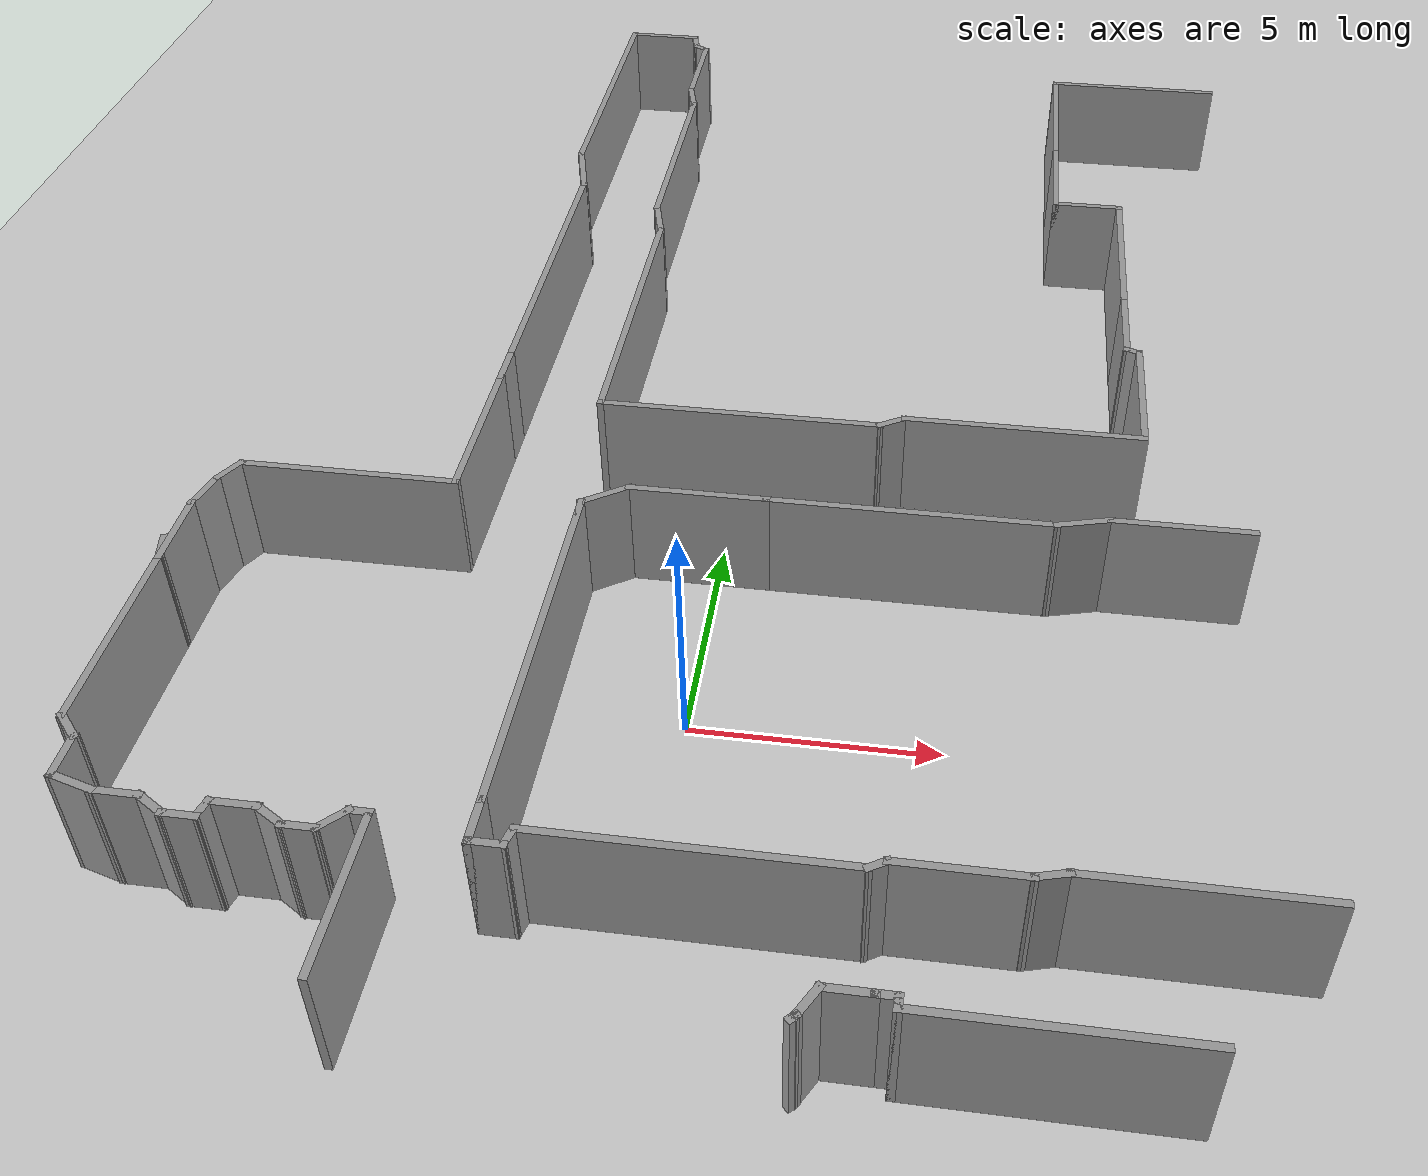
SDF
<sdf version="1.7">
 <world name="default">
  <model name="ground_plane">
   <static>1</static>
   <link name="link">
    <collision name="collision">
     <geometry><plane><normal>0 0 1</normal><size>100 100</size></plane></geometry>
     <surface><friction><ode><mu>100</mu><mu2>50</mu2></ode></friction></surface>
    </collision>
    <visual name="visual">
     <cast_shadows>0</cast_shadows>
     <geometry><plane><normal>0 0 1</normal><size>100 100</size></plane></geometry>
     <material>
      <script><uri>file://media/materials/scripts/gazebo.material</uri><name>Gazebo/Grey</name></script>
     </material>
    </visual>
   </link>
  </model>
  <model name="a10_simulation">
   <pose>8.94312 -0.455858 0 0 -0 0</pose>
   <link name="Wall_127">
    <collision name="Wall_127_Collision">
     <geometry><box><size>4.5 0.15 2.5</size></box></geometry>
     <pose>0 0 1.25 0 -0 0</pose>
    </collision>
    <visual name="Wall_127_Visual">
     <pose>0 0 1.25 0 -0 0</pose>
     <geometry><box><size>4.5 0.15 2.5</size></box></geometry>
     <material>
      <script><uri>file://media/materials/scripts/gazebo.material</uri><name>Gazebo/Grey</name></script>
      <ambient>1 1 1 1</ambient>
     </material>
     <meta><layer>0</layer></meta>
    </visual>
    <pose>0.096621 23.6399 0 0 -0 3.14159</pose>
   </link>
   <link name="Wall_128">
    <collision name="Wall_128_Collision">
     <geometry><box><size>4 0.15 2.5</size></box></geometry>
     <pose>0 0 1.25 0 -0 0</pose>
    </collision>
    <visual name="Wall_128_Visual">
     <pose>0 0 1.25 0 -0 0</pose>
     <geometry><box><size>4 0.15 2.5</size></box></geometry>
     <material>
      <script><uri>file://media/materials/scripts/gazebo.material</uri><name>Gazebo/Grey</name></script>
      <ambient>1 1 1 1</ambient>
     </material>
     <meta><layer>0</layer></meta>
    </visual>
    <pose>-2.07838 21.7149 0 0 -0 -1.5708</pose>
   </link>
   <link name="Wall_129">
    <collision name="Wall_129_Collision">
     <geometry><box><size>3 0.15 2.5</size></box></geometry>
     <pose>0 0 1.25 0 -0 0</pose>
    </collision>
    <visual name="Wall_129_Visual">
     <pose>0 0 1.25 0 -0 0</pose>
     <geometry><box><size>3 0.15 2.5</size></box></geometry>
     <material>
      <script><uri>file://media/materials/scripts/gazebo.material</uri><name>Gazebo/Grey</name></script>
      <ambient>1 1 1 1</ambient>
     </material>
     <meta><layer>0</layer></meta>
    </visual>
    <pose>-2.07838 18.3649 0 0 -0 -1.5708</pose>
   </link>
   <link name="Wall_130">
    <collision name="Wall_130_Collision">
     <geometry><box><size>1.75 0.15 2.5</size></box></geometry>
     <pose>0 0 1.25 0 -0 0</pose>
    </collision>
    <visual name="Wall_130_Visual">
     <pose>0 0 1.25 0 -0 0</pose>
     <geometry><box><size>1.75 0.15 2.5</size></box></geometry>
     <material>
      <script><uri>file://media/materials/scripts/gazebo.material</uri><name>Gazebo/Grey</name></script>
      <ambient>1 1 1 1</ambient>
     </material>
     <meta><layer>0</layer></meta>
    </visual>
    <pose>-1.27838 16.9399 0 0 -0 0</pose>
   </link>
   <link name="Wall_131">
    <collision name="Wall_131_Collision">
     <geometry><box><size>4.25 0.15 2.5</size></box></geometry>
     <pose>0 0 1.25 0 -0 0</pose>
    </collision>
    <visual name="Wall_131_Visual">
     <pose>0 0 1.25 0 -0 0</pose>
     <geometry><box><size>4.25 0.15 2.5</size></box></geometry>
     <material>
      <script><uri>file://media/materials/scripts/gazebo.material</uri><name>Gazebo/Grey</name></script>
      <ambient>1 1 1 1</ambient>
     </material>
     <meta><layer>0</layer></meta>
    </visual>
    <pose>-0.478379 14.8899 0 0 -0 -1.5708</pose>
   </link>
   <link name="Wall_133">
    <collision name="Wall_133_Collision">
     <geometry><box><size>2.25 0.15 2.5</size></box></geometry>
     <pose>0 0 1.25 0 -0 0</pose>
    </collision>
    <visual name="Wall_133_Visual">
     <pose>0 0 1.25 0 -0 0</pose>
     <geometry><box><size>2.25 0.15 2.5</size></box></geometry>
     <material>
      <script><uri>file://media/materials/scripts/gazebo.material</uri><name>Gazebo/Grey</name></script>
      <ambient>1 1 1 1</ambient>
     </material>
     <meta><layer>0</layer></meta>
    </visual>
    <pose>-0.478379 11.7899 0 0 -0 -1.5708</pose>
   </link>
   <link name="Wall_134">
    <collision name="Wall_134_Collision">
     <geometry><box><size>0.424124 0.15 2.5</size></box></geometry>
     <pose>0 0 1.25 0 -0 0</pose>
    </collision>
    <visual name="Wall_134_Visual">
     <pose>0 0 1.25 0 -0 0</pose>
     <geometry><box><size>0.424124 0.15 2.5</size></box></geometry>
     <material>
      <script><uri>file://media/materials/scripts/gazebo.material</uri><name>Gazebo/Grey</name></script>
      <ambient>1 1 1 1</ambient>
     </material>
     <meta><layer>0</layer></meta>
    </visual>
    <pose>-0.349018 10.6946 0 0 -0 -0.336789</pose>
   </link>
   <link name="Wall_135">
    <collision name="Wall_135_Collision">
     <geometry><box><size>3.25 0.15 2.5</size></box></geometry>
     <pose>0 0 1.25 0 -0 0</pose>
    </collision>
    <visual name="Wall_135_Visual">
     <pose>0 0 1.25 0 -0 0</pose>
     <geometry><box><size>3.25 0.15 2.5</size></box></geometry>
     <material>
      <script><uri>file://media/materials/scripts/gazebo.material</uri><name>Gazebo/Grey</name></script>
      <ambient>1 1 1 1</ambient>
     </material>
     <meta><layer>0</layer></meta>
    </visual>
    <pose>-0.20643 9.0993 0 0 -0 -1.5708</pose>
   </link>
   <link name="Wall_138">
    <collision name="Wall_138_Collision">
     <geometry><box><size>5.25 0.15 2.5</size></box></geometry>
     <pose>0 0 1.25 0 -0 0</pose>
    </collision>
    <visual name="Wall_138_Visual">
     <pose>0 0 1.25 0 -0 0</pose>
     <geometry><box><size>5.25 0.15 2.5</size></box></geometry>
     <material>
      <script><uri>file://media/materials/scripts/gazebo.material</uri><name>Gazebo/Grey</name></script>
      <ambient>1 1 1 1</ambient>
     </material>
     <meta><layer>0</layer></meta>
    </visual>
    <pose>-2.75643 7.5493 0 0 -0 3.14159</pose>
   </link>
   <link name="Wall_139">
    <collision name="Wall_139_Collision">
     <geometry><box><size>0.75 0.15 2.5</size></box></geometry>
     <pose>0 0 1.25 0 -0 0</pose>
    </collision>
    <visual name="Wall_139_Visual">
     <pose>0 0 1.25 0 -0 0</pose>
     <geometry><box><size>0.75 0.15 2.5</size></box></geometry>
     <material>
      <script><uri>file://media/materials/scripts/gazebo.material</uri><name>Gazebo/Grey</name></script>
      <ambient>1 1 1 1</ambient>
     </material>
     <meta><layer>0</layer></meta>
    </visual>
    <pose>-5.56624 7.3993 0 0 -0 -2.61799</pose>
   </link>
   <link name="Wall_140">
    <collision name="Wall_140_Collision">
     <geometry><box><size>6.25 0.15 2.5</size></box></geometry>
     <pose>0 0 1.25 0 -0 0</pose>
    </collision>
    <visual name="Wall_140_Visual">
     <pose>0 0 1.25 0 -0 0</pose>
     <geometry><box><size>6.25 0.15 2.5</size></box></geometry>
     <material>
      <script><uri>file://media/materials/scripts/gazebo.material</uri><name>Gazebo/Grey</name></script>
      <ambient>1 1 1 1</ambient>
     </material>
     <meta><layer>0</layer></meta>
    </visual>
    <pose>-8.87604 7.2493 0 0 -0 3.14159</pose>
   </link>
   <link name="Wall_142">
    <collision name="Wall_142_Collision">
     <geometry><box><size>7.25 0.15 2.5</size></box></geometry>
     <pose>0 0 1.25 0 -0 0</pose>
    </collision>
    <visual name="Wall_142_Visual">
     <pose>0 0 1.25 0 -0 0</pose>
     <geometry><box><size>7.25 0.15 2.5</size></box></geometry>
     <material>
      <script><uri>file://media/materials/scripts/gazebo.material</uri><name>Gazebo/Grey</name></script>
      <ambient>1 1 1 1</ambient>
     </material>
     <meta><layer>0</layer></meta>
    </visual>
    <pose>-11.926 10.7993 0 0 -0 1.5708</pose>
   </link>
   <link name="Wall_143">
    <collision name="Wall_143_Collision">
     <geometry><box><size>1.25 0.15 2.5</size></box></geometry>
     <pose>0 0 1.25 0 -0 0</pose>
    </collision>
    <visual name="Wall_143_Visual">
     <pose>0 0 1.25 0 -0 0</pose>
     <geometry><box><size>1.25 0.15 2.5</size></box></geometry>
     <material>
      <script><uri>file://media/materials/scripts/gazebo.material</uri><name>Gazebo/Grey</name></script>
      <ambient>1 1 1 1</ambient>
     </material>
     <meta><layer>0</layer></meta>
    </visual>
    <pose>-12.0684 14.8806 0 0 -0 1.8326</pose>
   </link>
   <link name="Wall_144">
    <collision name="Wall_144_Collision">
     <geometry><box><size>5.75 0.15 2.5</size></box></geometry>
     <pose>0 0 1.25 0 -0 0</pose>
    </collision>
    <visual name="Wall_144_Visual">
     <pose>0 0 1.25 0 -0 0</pose>
     <geometry><box><size>5.75 0.15 2.5</size></box></geometry>
     <material>
      <script><uri>file://media/materials/scripts/gazebo.material</uri><name>Gazebo/Grey</name></script>
      <ambient>1 1 1 1</ambient>
     </material>
     <meta><layer>0</layer></meta>
    </visual>
    <pose>-12.2107 18.2118 0 0 -0 1.5708</pose>
   </link>
   <link name="Wall_145">
    <collision name="Wall_145_Collision">
     <geometry><box><size>1 0.15 2.5</size></box></geometry>
     <pose>0 0 1.25 0 -0 0</pose>
    </collision>
    <visual name="Wall_145_Visual">
     <pose>0 0 1.25 0 -0 0</pose>
     <geometry><box><size>1 0.15 2.5</size></box></geometry>
     <material>
      <script><uri>file://media/materials/scripts/gazebo.material</uri><name>Gazebo/Grey</name></script>
      <ambient>1 1 1 1</ambient>
     </material>
     <meta><layer>0</layer></meta>
    </visual>
    <pose>-12.3207 21.4223 0 0 -0 1.8326</pose>
   </link>
   <link name="Wall_146">
    <collision name="Wall_146_Collision">
     <geometry><box><size>2.75 0.15 2.5</size></box></geometry>
     <pose>0 0 1.25 0 -0 0</pose>
    </collision>
    <visual name="Wall_146_Visual">
     <pose>0 0 1.25 0 -0 0</pose>
     <geometry><box><size>2.75 0.15 2.5</size></box></geometry>
     <material>
      <script><uri>file://media/materials/scripts/gazebo.material</uri><name>Gazebo/Grey</name></script>
      <ambient>1 1 1 1</ambient>
     </material>
     <meta><layer>0</layer></meta>
    </visual>
    <pose>-12.4307 23.1329 0 0 -0 1.5708</pose>
   </link>
   <link name="Wall_147">
    <collision name="Wall_147_Collision">
     <geometry><box><size>0.5 0.15 2.5</size></box></geometry>
     <pose>0 0 1.25 0 -0 0</pose>
    </collision>
    <visual name="Wall_147_Visual">
     <pose>0 0 1.25 0 -0 0</pose>
     <geometry><box><size>0.5 0.15 2.5</size></box></geometry>
     <material>
      <script><uri>file://media/materials/scripts/gazebo.material</uri><name>Gazebo/Grey</name></script>
      <ambient>1 1 1 1</ambient>
     </material>
     <meta><layer>0</layer></meta>
    </visual>
    <pose>-12.5823 24.5204 0 0 -0 2.61799</pose>
   </link>
   <link name="Wall_149">
    <collision name="Wall_149_Collision">
     <geometry><box><size>0.5 0.15 2.5</size></box></geometry>
     <pose>0 0 1.25 0 -0 0</pose>
    </collision>
    <visual name="Wall_149_Visual">
     <pose>0 0 1.25 0 -0 0</pose>
     <geometry><box><size>0.5 0.15 2.5</size></box></geometry>
     <material>
      <script><uri>file://media/materials/scripts/gazebo.material</uri><name>Gazebo/Grey</name></script>
      <ambient>1 1 1 1</ambient>
     </material>
     <meta><layer>0</layer></meta>
    </visual>
    <pose>-12.5823 24.5204 0 0 -0 2.61799</pose>
   </link>
   <link name="Wall_150">
    <collision name="Wall_150_Collision">
     <geometry><box><size>0.75 0.15 2.5</size></box></geometry>
     <pose>0 0 1.25 0 -0 0</pose>
    </collision>
    <visual name="Wall_150_Visual">
     <pose>0 0 1.25 0 -0 0</pose>
     <geometry><box><size>0.75 0.15 2.5</size></box></geometry>
     <material>
      <script><uri>file://media/materials/scripts/gazebo.material</uri><name>Gazebo/Grey</name></script>
      <ambient>1 1 1 1</ambient>
     </material>
     <meta><layer>0</layer></meta>
    </visual>
    <pose>-12.8115 24.8976 0 0 -0 1.8326</pose>
   </link>
   <link name="Wall_151">
    <collision name="Wall_151_Collision">
     <geometry><box><size>2 0.15 2.5</size></box></geometry>
     <pose>0 0 1.25 0 -0 0</pose>
    </collision>
    <visual name="Wall_151_Visual">
     <pose>0 0 1.25 0 -0 0</pose>
     <geometry><box><size>2 0.15 2.5</size></box></geometry>
     <material>
      <script><uri>file://media/materials/scripts/gazebo.material</uri><name>Gazebo/Grey</name></script>
      <ambient>1 1 1 1</ambient>
     </material>
     <meta><layer>0</layer></meta>
    </visual>
    <pose>-13.8141 25.1874 0 0 -0 3.14159</pose>
   </link>
   <link name="Wall_152">
    <collision name="Wall_152_Collision">
     <geometry><box><size>7.5 0.15 2.5</size></box></geometry>
     <pose>0 0 1.25 0 -0 0</pose>
    </collision>
    <visual name="Wall_152_Visual">
     <pose>0 0 1.25 0 -0 0</pose>
     <geometry><box><size>7.5 0.15 2.5</size></box></geometry>
     <material>
      <script><uri>file://media/materials/scripts/gazebo.material</uri><name>Gazebo/Grey</name></script>
      <ambient>1 1 1 1</ambient>
     </material>
     <meta><layer>0</layer></meta>
    </visual>
    <pose>-14.7391 21.5124 0 0 -0 -1.5708</pose>
   </link>
   <link name="Wall_153">
    <collision name="Wall_153_Collision">
     <geometry><box><size>1.75 0.15 2.5</size></box></geometry>
     <pose>0 0 1.25 0 -0 0</pose>
    </collision>
    <visual name="Wall_153_Visual">
     <pose>0 0 1.25 0 -0 0</pose>
     <geometry><box><size>1.75 0.15 2.5</size></box></geometry>
     <material>
      <script><uri>file://media/materials/scripts/gazebo.material</uri><name>Gazebo/Grey</name></script>
      <ambient>1 1 1 1</ambient>
     </material>
     <meta><layer>0</layer></meta>
    </visual>
    <pose>-14.5321 17.0647 0 0 -0 -1.309</pose>
   </link>
   <link name="Wall_154">
    <collision name="Wall_154_Collision">
     <geometry><box><size>7.75 0.15 2.5</size></box></geometry>
     <pose>0 0 1.25 0 -0 0</pose>
    </collision>
    <visual name="Wall_154_Visual">
     <pose>0 0 1.25 0 -0 0</pose>
     <geometry><box><size>7.75 0.15 2.5</size></box></geometry>
     <material>
      <script><uri>file://media/materials/scripts/gazebo.material</uri><name>Gazebo/Grey</name></script>
      <ambient>1 1 1 1</ambient>
     </material>
     <meta><layer>0</layer></meta>
    </visual>
    <pose>-14.325 12.4919 0 0 -0 -1.5708</pose>
   </link>
   <link name="Wall_156">
    <collision name="Wall_156_Collision">
     <geometry><box><size>1 0.15 2.5</size></box></geometry>
     <pose>0 0 1.25 0 -0 0</pose>
    </collision>
    <visual name="Wall_156_Visual">
     <pose>0 0 1.25 0 -0 0</pose>
     <geometry><box><size>1 0.15 2.5</size></box></geometry>
     <material>
      <script><uri>file://media/materials/scripts/gazebo.material</uri><name>Gazebo/Grey</name></script>
      <ambient>1 1 1 1</ambient>
     </material>
     <meta><layer>0</layer></meta>
    </visual>
    <pose>-14.325 8.26693 0 0 -0 -1.5708</pose>
   </link>
   <link name="Wall_157">
    <collision name="Wall_157_Collision">
     <geometry><box><size>3.75 0.15 2.5</size></box></geometry>
     <pose>0 0 1.25 0 -0 0</pose>
    </collision>
    <visual name="Wall_157_Visual">
     <pose>0 0 1.25 0 -0 0</pose>
     <geometry><box><size>3.75 0.15 2.5</size></box></geometry>
     <material>
      <script><uri>file://media/materials/scripts/gazebo.material</uri><name>Gazebo/Grey</name></script>
      <ambient>1 1 1 1</ambient>
     </material>
     <meta><layer>0</layer></meta>
    </visual>
    <pose>-14.325 6.04193 0 0 -0 -1.5708</pose>
   </link>
   <link name="Wall_158">
    <collision name="Wall_158_Collision">
     <geometry><box><size>4.75 0.15 2.5</size></box></geometry>
     <pose>0 0 1.25 0 -0 0</pose>
    </collision>
    <visual name="Wall_158_Visual">
     <pose>0 0 1.25 0 -0 0</pose>
     <geometry><box><size>4.75 0.15 2.5</size></box></geometry>
     <material>
      <script><uri>file://media/materials/scripts/gazebo.material</uri><name>Gazebo/Grey</name></script>
      <ambient>1 1 1 1</ambient>
     </material>
     <meta><layer>0</layer></meta>
    </visual>
    <pose>-16.625 4.24193 0 0 -0 3.14159</pose>
   </link>
   <link name="Wall_159">
    <collision name="Wall_159_Collision">
     <geometry><box><size>0.75 0.15 2.5</size></box></geometry>
     <pose>0 0 1.25 0 -0 0</pose>
    </collision>
    <visual name="Wall_159_Visual">
     <pose>0 0 1.25 0 -0 0</pose>
     <geometry><box><size>0.75 0.15 2.5</size></box></geometry>
     <material>
      <script><uri>file://media/materials/scripts/gazebo.material</uri><name>Gazebo/Grey</name></script>
      <ambient>1 1 1 1</ambient>
     </material>
     <meta><layer>0</layer></meta>
    </visual>
    <pose>-19.075 3.98213 0 0 -0 -2.0944</pose>
   </link>
   <link name="Wall_160">
    <collision name="Wall_160_Collision">
     <geometry><box><size>1 0.15 2.5</size></box></geometry>
     <pose>0 0 1.25 0 -0 0</pose>
    </collision>
    <visual name="Wall_160_Visual">
     <pose>0 0 1.25 0 -0 0</pose>
     <geometry><box><size>1 0.15 2.5</size></box></geometry>
     <material>
      <script><uri>file://media/materials/scripts/gazebo.material</uri><name>Gazebo/Grey</name></script>
      <ambient>1 1 1 1</ambient>
     </material>
     <meta><layer>0</layer></meta>
    </visual>
    <pose>-19.335 3.3118 0 0 -0 -1.8326</pose>
   </link>
   <link name="Wall_161">
    <collision name="Wall_161_Collision">
     <geometry><box><size>1.75 0.15 2.5</size></box></geometry>
     <pose>0 0 1.25 0 -0 0</pose>
    </collision>
    <visual name="Wall_161_Visual">
     <pose>0 0 1.25 0 -0 0</pose>
     <geometry><box><size>1.75 0.15 2.5</size></box></geometry>
     <material>
      <script><uri>file://media/materials/scripts/gazebo.material</uri><name>Gazebo/Grey</name></script>
      <ambient>1 1 1 1</ambient>
     </material>
     <meta><layer>0</layer></meta>
    </visual>
    <pose>-19.445 2.10128 0 0 -0 -1.5708</pose>
   </link>
   <link name="Wall_163">
    <collision name="Wall_163_Collision">
     <geometry><box><size>0.708474 0.15 2.5</size></box></geometry>
     <pose>0 0 1.25 0 -0 0</pose>
    </collision>
    <visual name="Wall_163_Visual">
     <pose>0 0 1.25 0 -0 0</pose>
     <geometry><box><size>0.708474 0.15 2.5</size></box></geometry>
     <material>
      <script><uri>file://media/materials/scripts/gazebo.material</uri><name>Gazebo/Grey</name></script>
      <ambient>1 1 1 1</ambient>
     </material>
     <meta><layer>0</layer></meta>
    </visual>
    <pose>-19.5091 1.57307 0 0 -0 -1.33924</pose>
   </link>
   <link name="Wall_164">
    <collision name="Wall_164_Collision">
     <geometry><box><size>4.25 0.15 2.5</size></box></geometry>
     <pose>0 0 1.25 0 -0 0</pose>
    </collision>
    <visual name="Wall_164_Visual">
     <pose>0 0 1.25 0 -0 0</pose>
     <geometry><box><size>4.25 0.15 2.5</size></box></geometry>
     <material>
      <script><uri>file://media/materials/scripts/gazebo.material</uri><name>Gazebo/Grey</name></script>
      <ambient>1 1 1 1</ambient>
     </material>
     <meta><layer>0</layer></meta>
    </visual>
    <pose>-19.445 -0.748719 0 0 -0 -1.5708</pose>
   </link>
   <link name="Wall_165">
    <collision name="Wall_165_Collision">
     <geometry><box><size>0.75 0.15 2.5</size></box></geometry>
     <pose>0 0 1.25 0 -0 0</pose>
    </collision>
    <visual name="Wall_165_Visual">
     <pose>0 0 1.25 0 -0 0</pose>
     <geometry><box><size>0.75 0.15 2.5</size></box></geometry>
     <material>
      <script><uri>file://media/materials/scripts/gazebo.material</uri><name>Gazebo/Grey</name></script>
      <ambient>1 1 1 1</ambient>
     </material>
     <meta><layer>0</layer></meta>
    </visual>
    <pose>-19.2329 -3.01085 0 0 -0 -0.785398</pose>
   </link>
   <link name="Wall_166">
    <collision name="Wall_166_Collision">
     <geometry><box><size>1 0.15 2.5</size></box></geometry>
     <pose>0 0 1.25 0 -0 0</pose>
    </collision>
    <visual name="Wall_166_Visual">
     <pose>0 0 1.25 0 -0 0</pose>
     <geometry><box><size>1 0.15 2.5</size></box></geometry>
     <material>
      <script><uri>file://media/materials/scripts/gazebo.material</uri><name>Gazebo/Grey</name></script>
      <ambient>1 1 1 1</ambient>
     </material>
     <meta><layer>0</layer></meta>
    </visual>
    <pose>-19.0208 -3.64798 0 0 -0 -1.5708</pose>
   </link>
   <link name="Wall_167">
    <collision name="Wall_167_Collision">
     <geometry><box><size>1 0.15 2.5</size></box></geometry>
     <pose>0 0 1.25 0 -0 0</pose>
    </collision>
    <visual name="Wall_167_Visual">
     <pose>0 0 1.25 0 -0 0</pose>
     <geometry><box><size>1 0.15 2.5</size></box></geometry>
     <material>
      <script><uri>file://media/materials/scripts/gazebo.material</uri><name>Gazebo/Grey</name></script>
      <ambient>1 1 1 1</ambient>
     </material>
     <meta><layer>0</layer></meta>
    </visual>
    <pose>-18.6102 -4.18298 0 0 -0 -0.261799</pose>
   </link>
   <link name="Wall_168">
    <collision name="Wall_168_Collision">
     <geometry><box><size>1 0.15 2.5</size></box></geometry>
     <pose>0 0 1.25 0 -0 0</pose>
    </collision>
    <visual name="Wall_168_Visual">
     <pose>0 0 1.25 0 -0 0</pose>
     <geometry><box><size>1 0.15 2.5</size></box></geometry>
     <material>
      <script><uri>file://media/materials/scripts/gazebo.material</uri><name>Gazebo/Grey</name></script>
      <ambient>1 1 1 1</ambient>
     </material>
     <meta><layer>0</layer></meta>
    </visual>
    <pose>-17.7747 -4.29298 0 0 -0 0</pose>
   </link>
   <link name="Wall_169">
    <collision name="Wall_169_Collision">
     <geometry><box><size>0.75 0.15 2.5</size></box></geometry>
     <pose>0 0 1.25 0 -0 0</pose>
    </collision>
    <visual name="Wall_169_Visual">
     <pose>0 0 1.25 0 -0 0</pose>
     <geometry><box><size>0.75 0.15 2.5</size></box></geometry>
     <material>
      <script><uri>file://media/materials/scripts/gazebo.material</uri><name>Gazebo/Grey</name></script>
      <ambient>1 1 1 1</ambient>
     </material>
     <meta><layer>0</layer></meta>
    </visual>
    <pose>-17.0899 -4.44298 0 0 -0 -0.523599</pose>
   </link>
   <link name="Wall_170">
    <collision name="Wall_170_Collision">
     <geometry><box><size>0.75 0.15 2.5</size></box></geometry>
     <pose>0 0 1.25 0 -0 0</pose>
    </collision>
    <visual name="Wall_170_Visual">
     <pose>0 0 1.25 0 -0 0</pose>
     <geometry><box><size>0.75 0.15 2.5</size></box></geometry>
     <material>
      <script><uri>file://media/materials/scripts/gazebo.material</uri><name>Gazebo/Grey</name></script>
      <ambient>1 1 1 1</ambient>
     </material>
     <meta><layer>0</layer></meta>
    </visual>
    <pose>-16.5301 -4.59298 0 0 -0 0</pose>
   </link>
   <link name="Wall_171">
    <collision name="Wall_171_Collision">
     <geometry><box><size>0.5 0.15 2.5</size></box></geometry>
     <pose>0 0 1.25 0 -0 0</pose>
    </collision>
    <visual name="Wall_171_Visual">
     <pose>0 0 1.25 0 -0 0</pose>
     <geometry><box><size>0.5 0.15 2.5</size></box></geometry>
     <material>
      <script><uri>file://media/materials/scripts/gazebo.material</uri><name>Gazebo/Grey</name></script>
      <ambient>1 1 1 1</ambient>
     </material>
     <meta><layer>0</layer></meta>
    </visual>
    <pose>-16.1848 -4.42394 0 0 -0 1.309</pose>
   </link>
   <link name="Wall_172">
    <collision name="Wall_172_Collision">
     <geometry><box><size>1 0.15 2.5</size></box></geometry>
     <pose>0 0 1.25 0 -0 0</pose>
    </collision>
    <visual name="Wall_172_Visual">
     <pose>0 0 1.25 0 -0 0</pose>
     <geometry><box><size>1 0.15 2.5</size></box></geometry>
     <material>
      <script><uri>file://media/materials/scripts/gazebo.material</uri><name>Gazebo/Grey</name></script>
      <ambient>1 1 1 1</ambient>
     </material>
     <meta><layer>0</layer></meta>
    </visual>
    <pose>-15.7145 -4.2549 0 0 -0 0</pose>
   </link>
   <link name="Wall_173">
    <collision name="Wall_173_Collision">
     <geometry><box><size>0.75 0.15 2.5</size></box></geometry>
     <pose>0 0 1.25 0 -0 0</pose>
    </collision>
    <visual name="Wall_173_Visual">
     <pose>0 0 1.25 0 -0 0</pose>
     <geometry><box><size>0.75 0.15 2.5</size></box></geometry>
     <material>
      <script><uri>file://media/materials/scripts/gazebo.material</uri><name>Gazebo/Grey</name></script>
      <ambient>1 1 1 1</ambient>
     </material>
     <meta><layer>0</layer></meta>
    </visual>
    <pose>-15.0297 -4.40491 0 0 -0 -0.523599</pose>
   </link>
   <link name="Wall_174">
    <collision name="Wall_174_Collision">
     <geometry><box><size>0.75 0.15 2.5</size></box></geometry>
     <pose>0 0 1.25 0 -0 0</pose>
    </collision>
    <visual name="Wall_174_Visual">
     <pose>0 0 1.25 0 -0 0</pose>
     <geometry><box><size>0.75 0.15 2.5</size></box></geometry>
     <material>
      <script><uri>file://media/materials/scripts/gazebo.material</uri><name>Gazebo/Grey</name></script>
      <ambient>1 1 1 1</ambient>
     </material>
     <meta><layer>0</layer></meta>
    </visual>
    <pose>-14.4699 -4.5549 0 0 -0 0</pose>
   </link>
   <link name="Wall_175">
    <collision name="Wall_175_Collision">
     <geometry><box><size>0.75 0.15 2.5</size></box></geometry>
     <pose>0 0 1.25 0 -0 0</pose>
    </collision>
    <visual name="Wall_175_Visual">
     <pose>0 0 1.25 0 -0 0</pose>
     <geometry><box><size>0.75 0.15 2.5</size></box></geometry>
     <material>
      <script><uri>file://media/materials/scripts/gazebo.material</uri><name>Gazebo/Grey</name></script>
      <ambient>1 1 1 1</ambient>
     </material>
     <meta><layer>0</layer></meta>
    </visual>
    <pose>-13.9578 -4.34277 0 0 -0 0.785398</pose>
   </link>
   <link name="Wall_176">
    <collision name="Wall_176_Collision">
     <geometry><box><size>0.5 0.15 2.5</size></box></geometry>
     <pose>0 0 1.25 0 -0 0</pose>
    </collision>
    <visual name="Wall_176_Visual">
     <pose>0 0 1.25 0 -0 0</pose>
     <geometry><box><size>0.5 0.15 2.5</size></box></geometry>
     <material>
      <script><uri>file://media/materials/scripts/gazebo.material</uri><name>Gazebo/Grey</name></script>
      <ambient>1 1 1 1</ambient>
     </material>
     <meta><layer>0</layer></meta>
    </visual>
    <pose>-13.5706 -4.13064 0 0 -0 0</pose>
   </link>
   <link name="Wall_177">
    <collision name="Wall_177_Collision">
     <geometry><box><size>3.25 0.15 2.5</size></box></geometry>
     <pose>0 0 1.25 0 -0 0</pose>
    </collision>
    <visual name="Wall_177_Visual">
     <pose>0 0 1.25 0 -0 0</pose>
     <geometry><box><size>3.25 0.15 2.5</size></box></geometry>
     <material>
      <script><uri>file://media/materials/scripts/gazebo.material</uri><name>Gazebo/Grey</name></script>
      <ambient>1 1 1 1</ambient>
     </material>
     <meta><layer>0</layer></meta>
    </visual>
    <pose>-13.3956 -5.68064 0 0 -0 -1.5708</pose>
   </link>
   <link name="Wall_190">
    <collision name="Wall_190_Collision">
     <geometry><box><size>7.75 0.15 2.5</size></box></geometry>
     <pose>0 0 1.25 0 -0 0</pose>
    </collision>
    <visual name="Wall_190_Visual">
     <pose>0 0 1.25 0 -0 0</pose>
     <geometry><box><size>7.75 0.15 2.5</size></box></geometry>
     <material>
      <script><uri>file://media/materials/scripts/gazebo.material</uri><name>Gazebo/Grey</name></script>
      <ambient>1 1 1 1</ambient>
     </material>
     <meta><layer>0</layer></meta>
    </visual>
    <pose>-11.6217 0.180775 0 0 -0 -1.5708</pose>
   </link>
   <link name="Wall_191">
    <collision name="Wall_191_Collision">
     <geometry><box><size>1 0.15 2.5</size></box></geometry>
     <pose>0 0 1.25 0 -0 0</pose>
    </collision>
    <visual name="Wall_191_Visual">
     <pose>0 0 1.25 0 -0 0</pose>
     <geometry><box><size>1 0.15 2.5</size></box></geometry>
     <material>
      <script><uri>file://media/materials/scripts/gazebo.material</uri><name>Gazebo/Grey</name></script>
      <ambient>1 1 1 1</ambient>
     </material>
     <meta><layer>0</layer></meta>
    </visual>
    <pose>-11.6217 -4.04422 0 0 -0 -1.5708</pose>
   </link>
   <link name="Wall_192">
    <collision name="Wall_192_Collision">
     <geometry><box><size>0.75 0.15 2.5</size></box></geometry>
     <pose>0 0 1.25 0 -0 0</pose>
    </collision>
    <visual name="Wall_192_Visual">
     <pose>0 0 1.25 0 -0 0</pose>
     <geometry><box><size>0.75 0.15 2.5</size></box></geometry>
     <material>
      <script><uri>file://media/materials/scripts/gazebo.material</uri><name>Gazebo/Grey</name></script>
      <ambient>1 1 1 1</ambient>
     </material>
     <meta><layer>0</layer></meta>
    </visual>
    <pose>-11.3217 -4.46922 0 0 -0 0</pose>
   </link>
   <link name="Wall_193">
    <collision name="Wall_193_Collision">
     <geometry><box><size>0.5 0.15 2.5</size></box></geometry>
     <pose>0 0 1.25 0 -0 0</pose>
    </collision>
    <visual name="Wall_193_Visual">
     <pose>0 0 1.25 0 -0 0</pose>
     <geometry><box><size>0.5 0.15 2.5</size></box></geometry>
     <material>
      <script><uri>file://media/materials/scripts/gazebo.material</uri><name>Gazebo/Grey</name></script>
      <ambient>1 1 1 1</ambient>
     </material>
     <meta><layer>0</layer></meta>
    </visual>
    <pose>-10.9764 -4.30019 0 0 -0 1.309</pose>
   </link>
   <link name="Wall_194">
    <collision name="Wall_194_Collision">
     <geometry><box><size>6 0.15 2.5</size></box></geometry>
     <pose>0 0 1.25 0 -0 0</pose>
    </collision>
    <visual name="Wall_194_Visual">
     <pose>0 0 1.25 0 -0 0</pose>
     <geometry><box><size>6 0.15 2.5</size></box></geometry>
     <material>
      <script><uri>file://media/materials/scripts/gazebo.material</uri><name>Gazebo/Grey</name></script>
      <ambient>1 1 1 1</ambient>
     </material>
     <meta><layer>0</layer></meta>
    </visual>
    <pose>-8.00614 -4.13115 0 0 -0 0</pose>
   </link>
   <link name="Wall_195">
    <collision name="Wall_195_Collision">
     <geometry><box><size>0.5 0.15 2.5</size></box></geometry>
     <pose>0 0 1.25 0 -0 0</pose>
    </collision>
    <visual name="Wall_195_Visual">
     <pose>0 0 1.25 0 -0 0</pose>
     <geometry><box><size>0.5 0.15 2.5</size></box></geometry>
     <material>
      <script><uri>file://media/materials/scripts/gazebo.material</uri><name>Gazebo/Grey</name></script>
      <ambient>1 1 1 1</ambient>
     </material>
     <meta><layer>0</layer></meta>
    </visual>
    <pose>-4.92959 -4.04365 0 0 -0 0.523599</pose>
   </link>
   <link name="Wall_196">
    <collision name="Wall_196_Collision">
     <geometry><box><size>2.5 0.15 2.5</size></box></geometry>
     <pose>0 0 1.25 0 -0 0</pose>
    </collision>
    <visual name="Wall_196_Visual">
     <pose>0 0 1.25 0 -0 0</pose>
     <geometry><box><size>2.5 0.15 2.5</size></box></geometry>
     <material>
      <script><uri>file://media/materials/scripts/gazebo.material</uri><name>Gazebo/Grey</name></script>
      <ambient>1 1 1 1</ambient>
     </material>
     <meta><layer>0</layer></meta>
    </visual>
    <pose>-3.60303 -3.95615 0 0 -0 0</pose>
   </link>
   <link name="Wall_197">
    <collision name="Wall_197_Collision">
     <geometry><box><size>0.75 0.15 2.5</size></box></geometry>
     <pose>0 0 1.25 0 -0 0</pose>
    </collision>
    <visual name="Wall_197_Visual">
     <pose>0 0 1.25 0 -0 0</pose>
     <geometry><box><size>0.75 0.15 2.5</size></box></geometry>
     <material>
      <script><uri>file://media/materials/scripts/gazebo.material</uri><name>Gazebo/Grey</name></script>
      <ambient>1 1 1 1</ambient>
     </material>
     <meta><layer>0</layer></meta>
    </visual>
    <pose>-2.13826 -3.87851 0 0 -0 0.261799</pose>
   </link>
   <link name="Wall_198">
    <collision name="Wall_198_Collision">
     <geometry><box><size>4.5 0.15 2.5</size></box></geometry>
     <pose>0 0 1.25 0 -0 0</pose>
    </collision>
    <visual name="Wall_198_Visual">
     <pose>0 0 1.25 0 -0 0</pose>
     <geometry><box><size>4.5 0.15 2.5</size></box></geometry>
     <material>
      <script><uri>file://media/materials/scripts/gazebo.material</uri><name>Gazebo/Grey</name></script>
      <ambient>1 1 1 1</ambient>
     </material>
     <meta><layer>0</layer></meta>
    </visual>
    <pose>0.32652 -3.80086 0 0 -0 0</pose>
   </link>
   <link name="Wall_213">
    <collision name="Wall_213_Collision">
     <geometry><box><size>3 0.15 2.5</size></box></geometry>
     <pose>0 0 1.25 0 -0 0</pose>
    </collision>
    <visual name="Wall_213_Visual">
     <pose>0 0 1.25 0 -0 0</pose>
     <geometry><box><size>3 0.15 2.5</size></box></geometry>
     <material>
      <script><uri>file://media/materials/scripts/gazebo.material</uri><name>Gazebo/Grey</name></script>
      <ambient>1 1 1 1</ambient>
     </material>
     <meta><layer>0</layer></meta>
    </visual>
    <pose>0.429812 4.83222 0 0 -0 3.14159</pose>
   </link>
   <link name="Wall_214">
    <collision name="Wall_214_Collision">
     <geometry><box><size>1.25 0.15 2.5</size></box></geometry>
     <pose>0 0 1.25 0 -0 0</pose>
    </collision>
    <visual name="Wall_214_Visual">
     <pose>0 0 1.25 0 -0 0</pose>
     <geometry><box><size>1.25 0.15 2.5</size></box></geometry>
     <material>
      <script><uri>file://media/materials/scripts/gazebo.material</uri><name>Gazebo/Grey</name></script>
      <ambient>1 1 1 1</ambient>
     </material>
     <meta><layer>0</layer></meta>
    </visual>
    <pose>-1.52645 4.68987 0 0 -0 -2.87979</pose>
   </link>
   <link name="Wall_215">
    <collision name="Wall_215_Collision">
     <geometry><box><size>6 0.15 2.5</size></box></geometry>
     <pose>0 0 1.25 0 -0 0</pose>
    </collision>
    <visual name="Wall_215_Visual">
     <pose>0 0 1.25 0 -0 0</pose>
     <geometry><box><size>6 0.15 2.5</size></box></geometry>
     <material>
      <script><uri>file://media/materials/scripts/gazebo.material</uri><name>Gazebo/Grey</name></script>
      <ambient>1 1 1 1</ambient>
     </material>
     <meta><layer>0</layer></meta>
    </visual>
    <pose>-4.98271 4.54752 0 0 -0 3.14159</pose>
   </link>
   <link name="Wall_216">
    <collision name="Wall_216_Collision">
     <geometry><box><size>3 0.15 2.5</size></box></geometry>
     <pose>0 0 1.25 0 -0 0</pose>
    </collision>
    <visual name="Wall_216_Visual">
     <pose>0 0 1.25 0 -0 0</pose>
     <geometry><box><size>3 0.15 2.5</size></box></geometry>
     <material>
      <script><uri>file://media/materials/scripts/gazebo.material</uri><name>Gazebo/Grey</name></script>
      <ambient>1 1 1 1</ambient>
     </material>
     <meta><layer>0</layer></meta>
    </visual>
    <pose>-9.33271 4.54752 0 0 -0 3.14159</pose>
   </link>
   <link name="Wall_217">
    <collision name="Wall_217_Collision">
     <geometry><box><size>1.18331 0.15 2.5</size></box></geometry>
     <pose>0 0 1.25 0 -0 0</pose>
    </collision>
    <visual name="Wall_217_Visual">
     <pose>0 0 1.25 0 -0 0</pose>
     <geometry><box><size>1.18331 0.15 2.5</size></box></geometry>
     <material>
      <script><uri>file://media/materials/scripts/gazebo.material</uri><name>Gazebo/Grey</name></script>
      <ambient>1 1 1 1</ambient>
     </material>
     <meta><layer>0</layer></meta>
    </visual>
    <pose>-11.1897 4.26415 0 0 -0 -2.56105</pose>
   </link>
   <link name="Wall_218">
    <collision name="Wall_218_Collision">
     <geometry><box><size>0.5 0.15 2.5</size></box></geometry>
     <pose>0 0 1.25 0 -0 0</pose>
    </collision>
    <visual name="Wall_218_Visual">
     <pose>0 0 1.25 0 -0 0</pose>
     <geometry><box><size>0.5 0.15 2.5</size></box></geometry>
     <material>
      <script><uri>file://media/materials/scripts/gazebo.material</uri><name>Gazebo/Grey</name></script>
      <ambient>1 1 1 1</ambient>
     </material>
     <meta><layer>0</layer></meta>
    </visual>
    <pose>-11.6217 3.80578 0 0 -0 -1.5708</pose>
   </link>
   <link name="Wall_26">
    <collision name="Wall_26_Collision">
     <geometry><box><size>0.25 0.15 2.5</size></box></geometry>
     <pose>0 0 1.25 0 -0 0</pose>
    </collision>
    <visual name="Wall_26_Visual">
     <pose>0 0 1.25 0 -0 0</pose>
     <geometry><box><size>0.25 0.15 2.5</size></box></geometry>
     <material>
      <script><uri>file://media/materials/scripts/gazebo.material</uri><name>Gazebo/Grey</name></script>
      <ambient>1 1 1 1</ambient>
     </material>
     <meta><layer>0</layer></meta>
    </visual>
    <pose>-5.95616 -6.93114 0 0 -0 0.785398</pose>
   </link>
   <link name="Wall_27">
    <collision name="Wall_27_Collision">
     <geometry><box><size>0.75 0.15 2.5</size></box></geometry>
     <pose>0 0 1.25 0 -0 0</pose>
    </collision>
    <visual name="Wall_27_Visual">
     <pose>0 0 1.25 0 -0 0</pose>
     <geometry><box><size>0.75 0.15 2.5</size></box></geometry>
     <material>
      <script><uri>file://media/materials/scripts/gazebo.material</uri><name>Gazebo/Grey</name></script>
      <ambient>1 1 1 1</ambient>
     </material>
     <meta><layer>0</layer></meta>
    </visual>
    <pose>-5.77081 -6.63598 0 0 -0 1.0472</pose>
   </link>
   <link name="Wall_28">
    <collision name="Wall_28_Collision">
     <geometry><box><size>1 0.15 2.5</size></box></geometry>
     <pose>0 0 1.25 0 -0 0</pose>
    </collision>
    <visual name="Wall_28_Visual">
     <pose>0 0 1.25 0 -0 0</pose>
     <geometry><box><size>1 0.15 2.5</size></box></geometry>
     <material>
      <script><uri>file://media/materials/scripts/gazebo.material</uri><name>Gazebo/Grey</name></script>
      <ambient>1 1 1 1</ambient>
     </material>
     <meta><layer>0</layer></meta>
    </visual>
    <pose>-5.19581 -6.37617 0 0 -0 0</pose>
   </link>
   <link name="Wall_29">
    <collision name="Wall_29_Collision">
     <geometry><box><size>0.5 0.15 2.5</size></box></geometry>
     <pose>0 0 1.25 0 -0 0</pose>
    </collision>
    <visual name="Wall_29_Visual">
     <pose>0 0 1.25 0 -0 0</pose>
     <geometry><box><size>0.5 0.15 2.5</size></box></geometry>
     <material>
      <script><uri>file://media/materials/scripts/gazebo.material</uri><name>Gazebo/Grey</name></script>
      <ambient>1 1 1 1</ambient>
     </material>
     <meta><layer>0</layer></meta>
    </visual>
    <pose>-4.59581 -6.37617 0 0 -0 0</pose>
   </link>
   <link name="Wall_30">
    <collision name="Wall_30_Collision">
     <geometry><box><size>0.25 0.15 2.5</size></box></geometry>
     <pose>0 0 1.25 0 -0 0</pose>
    </collision>
    <visual name="Wall_30_Visual">
     <pose>0 0 1.25 0 -0 0</pose>
     <geometry><box><size>0.25 0.15 2.5</size></box></geometry>
     <material>
      <script><uri>file://media/materials/scripts/gazebo.material</uri><name>Gazebo/Grey</name></script>
      <ambient>1 1 1 1</ambient>
     </material>
     <meta><layer>0</layer></meta>
    </visual>
    <pose>-4.42081 -6.42617 0 0 -0 -1.5708</pose>
   </link>
   <link name="Wall_31">
    <collision name="Wall_31_Collision">
     <geometry><box><size>0.25 0.15 2.5</size></box></geometry>
     <pose>0 0 1.25 0 -0 0</pose>
    </collision>
    <visual name="Wall_31_Visual">
     <pose>0 0 1.25 0 -0 0</pose>
     <geometry><box><size>0.25 0.15 2.5</size></box></geometry>
     <material>
      <script><uri>file://media/materials/scripts/gazebo.material</uri><name>Gazebo/Grey</name></script>
      <ambient>1 1 1 1</ambient>
     </material>
     <meta><layer>0</layer></meta>
    </visual>
    <pose>-4.42081 -6.52617 0 0 -0 -1.5708</pose>
   </link>
   <link name="Wall_32">
    <collision name="Wall_32_Collision">
     <geometry><box><size>5 0.15 2.5</size></box></geometry>
     <pose>0 0 1.25 0 -0 0</pose>
    </collision>
    <visual name="Wall_32_Visual">
     <pose>0 0 1.25 0 -0 0</pose>
     <geometry><box><size>5 0.15 2.5</size></box></geometry>
     <material>
      <script><uri>file://media/materials/scripts/gazebo.material</uri><name>Gazebo/Grey</name></script>
      <ambient>1 1 1 1</ambient>
     </material>
     <meta><layer>0</layer></meta>
    </visual>
    <pose>-1.99581 -6.57617 0 0 -0 0</pose>
   </link>
   <static>1</static>
  </model>
 </world>
</sdf>
